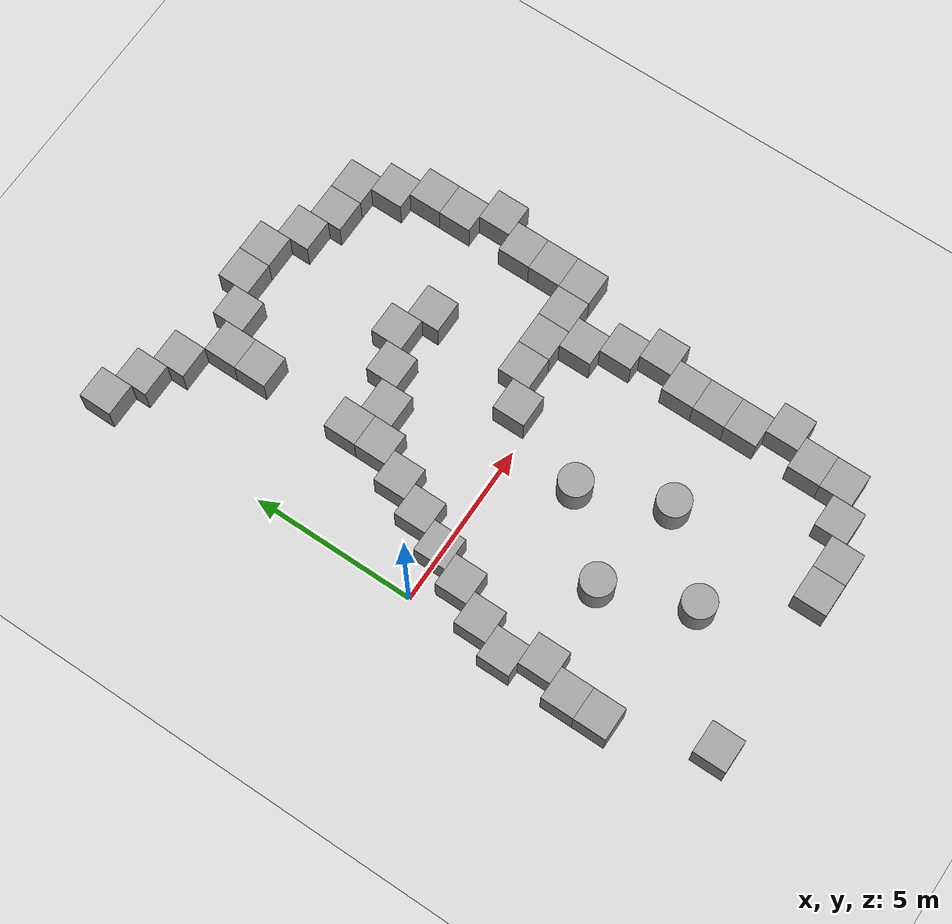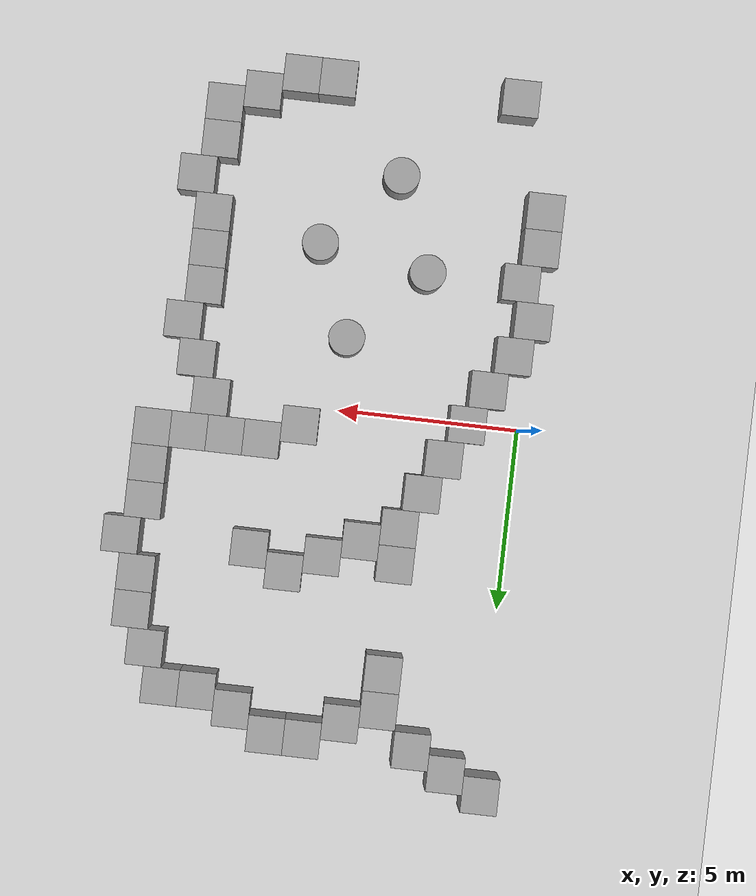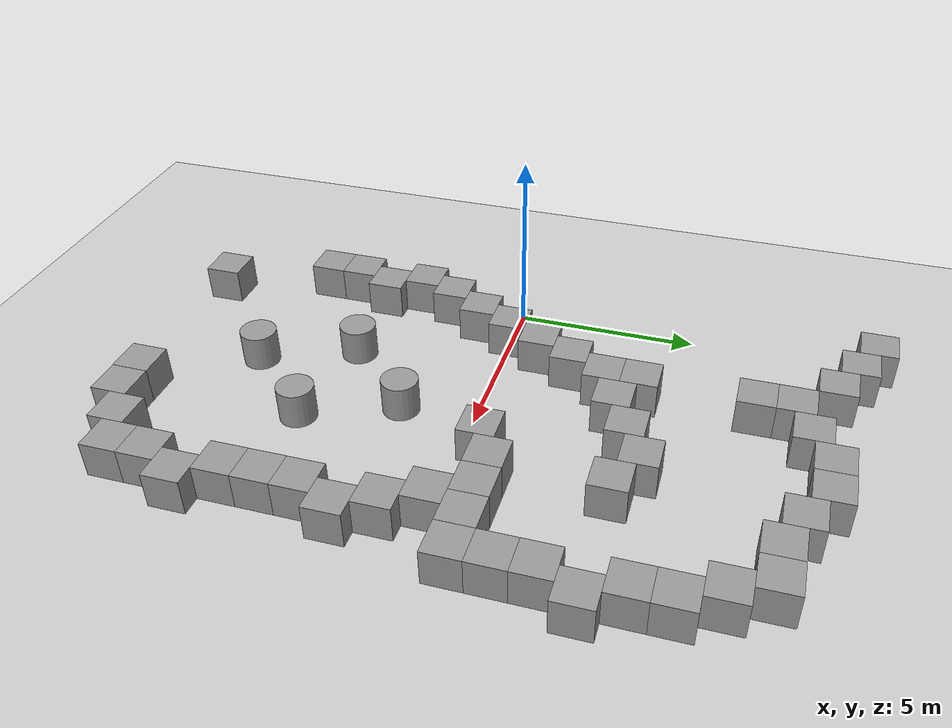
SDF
<sdf version="1.4">
 <world name="default">
  <model name="ground_plane">
   <static>1</static>
   <link name="link">
    <collision name="collision">
     <geometry><plane><normal>0 0 1</normal><size>100 100</size></plane></geometry>
     <surface><friction><ode><mu>100</mu><mu2>50</mu2></ode></friction></surface>
    </collision>
    <visual name="visual">
     <cast_shadows>0</cast_shadows>
     <geometry><plane><normal>0 0 1</normal><size>100 100</size></plane></geometry>
     <material>
      <script><uri>file://media/materials/scripts/gazebo.material</uri><name>Gazebo/Grey</name></script>
     </material>
    </visual>
    <velocity_decay><linear>0</linear><angular>0</angular></velocity_decay>
   </link>
  </model>
  <model name="unit_box_2">
   <pose>1.00001 -9 0.5 0 -0 6e-06</pose>
   <link name="link">
    <inertial>
     <mass>1</mass>
     <inertia><ixx>1</ixx><ixy>0</ixy><ixz>0</ixz><iyy>1</iyy><iyz>0</iyz><izz>1</izz></inertia>
    </inertial>
    <collision name="collision"><geometry><box><size>1 1 1</size></box></geometry></collision>
    <visual name="visual">
     <geometry><box><size>1 1 1</size></box></geometry>
     <material>
      <script><uri>file://media/materials/scripts/gazebo.material</uri><name>Gazebo/Grey</name></script>
     </material>
    </visual>
    <velocity_decay><linear>0</linear><angular>0</angular></velocity_decay>
   </link>
   <static>0</static>
  </model>
  <model name="unit_box_3">
   <pose>6 -9 0.5 0 -0 2e-06</pose>
   <link name="link">
    <inertial>
     <mass>1</mass>
     <inertia><ixx>1</ixx><ixy>0</ixy><ixz>0</ixz><iyy>1</iyy><iyz>0</iyz><izz>1</izz></inertia>
    </inertial>
    <collision name="collision"><geometry><box><size>1 1 1</size></box></geometry></collision>
    <visual name="visual">
     <geometry><box><size>1 1 1</size></box></geometry>
     <material>
      <script><uri>file://media/materials/scripts/gazebo.material</uri><name>Gazebo/Grey</name></script>
     </material>
    </visual>
    <velocity_decay><linear>0</linear><angular>0</angular></velocity_decay>
   </link>
   <static>0</static>
  </model>
  <model name="unit_box_4">
   <pose>7 -9 0.5 0 -0 3e-06</pose>
   <link name="link">
    <inertial>
     <mass>1</mass>
     <inertia><ixx>1</ixx><ixy>0</ixy><ixz>0</ixz><iyy>1</iyy><iyz>0</iyz><izz>1</izz></inertia>
    </inertial>
    <collision name="collision"><geometry><box><size>1 1 1</size></box></geometry></collision>
    <visual name="visual">
     <geometry><box><size>1 1 1</size></box></geometry>
     <material>
      <script><uri>file://media/materials/scripts/gazebo.material</uri><name>Gazebo/Grey</name></script>
     </material>
    </visual>
    <velocity_decay><linear>0</linear><angular>0</angular></velocity_decay>
   </link>
   <static>0</static>
  </model>
  <model name="unit_box_5">
   <pose>8 -8.44018 0.5 0 -0 4e-06</pose>
   <link name="link">
    <inertial>
     <mass>1</mass>
     <inertia><ixx>1</ixx><ixy>0</ixy><ixz>0</ixz><iyy>1</iyy><iyz>0</iyz><izz>1</izz></inertia>
    </inertial>
    <collision name="collision"><geometry><box><size>1 1 1</size></box></geometry></collision>
    <visual name="visual">
     <geometry><box><size>1 1 1</size></box></geometry>
     <material>
      <script><uri>file://media/materials/scripts/gazebo.material</uri><name>Gazebo/Grey</name></script>
     </material>
    </visual>
    <velocity_decay><linear>0</linear><angular>0</angular></velocity_decay>
   </link>
   <static>0</static>
  </model>
  <model name="unit_box_6">
   <pose>9 -8.00001 0.5 0 -0 0</pose>
   <link name="link">
    <inertial>
     <mass>1</mass>
     <inertia><ixx>1</ixx><ixy>0</ixy><ixz>0</ixz><iyy>1</iyy><iyz>0</iyz><izz>1</izz></inertia>
    </inertial>
    <collision name="collision"><geometry><box><size>1 1 1</size></box></geometry></collision>
    <visual name="visual">
     <geometry><box><size>1 1 1</size></box></geometry>
     <material>
      <script><uri>file://media/materials/scripts/gazebo.material</uri><name>Gazebo/Grey</name></script>
     </material>
    </visual>
    <velocity_decay><linear>0</linear><angular>0</angular></velocity_decay>
   </link>
   <static>0</static>
  </model>
  <model name="unit_box_7">
   <pose>9 -7 0.5 0 0 -1e-06</pose>
   <link name="link">
    <inertial>
     <mass>1</mass>
     <inertia><ixx>1</ixx><ixy>0</ixy><ixz>0</ixz><iyy>1</iyy><iyz>0</iyz><izz>1</izz></inertia>
    </inertial>
    <collision name="collision"><geometry><box><size>1 1 1</size></box></geometry></collision>
    <visual name="visual">
     <geometry><box><size>1 1 1</size></box></geometry>
     <material>
      <script><uri>file://media/materials/scripts/gazebo.material</uri><name>Gazebo/Grey</name></script>
     </material>
    </visual>
    <velocity_decay><linear>0</linear><angular>0</angular></velocity_decay>
   </link>
   <static>0</static>
  </model>
  <model name="unit_box_8">
   <pose>9.53836 -6 0.5 -0 -0 -1e-06</pose>
   <link name="link">
    <inertial>
     <mass>1</mass>
     <inertia><ixx>1</ixx><ixy>0</ixy><ixz>0</ixz><iyy>1</iyy><iyz>0</iyz><izz>1</izz></inertia>
    </inertial>
    <collision name="collision"><geometry><box><size>1 1 1</size></box></geometry></collision>
    <visual name="visual">
     <geometry><box><size>1 1 1</size></box></geometry>
     <material>
      <script><uri>file://media/materials/scripts/gazebo.material</uri><name>Gazebo/Grey</name></script>
     </material>
    </visual>
    <velocity_decay><linear>0</linear><angular>0</angular></velocity_decay>
   </link>
   <static>0</static>
  </model>
  <model name="unit_box_9">
   <pose>9 -5 0.5 0 -0 0</pose>
   <link name="link">
    <inertial>
     <mass>1</mass>
     <inertia><ixx>1</ixx><ixy>0</ixy><ixz>0</ixz><iyy>1</iyy><iyz>0</iyz><izz>1</izz></inertia>
    </inertial>
    <collision name="collision"><geometry><box><size>1 1 1</size></box></geometry></collision>
    <visual name="visual">
     <geometry><box><size>1 1 1</size></box></geometry>
     <material>
      <script><uri>file://media/materials/scripts/gazebo.material</uri><name>Gazebo/Grey</name></script>
     </material>
    </visual>
    <velocity_decay><linear>0</linear><angular>0</angular></velocity_decay>
   </link>
   <static>0</static>
  </model>
  <model name="unit_box_10">
   <pose>9 -4 0.5 0 -0 1e-06</pose>
   <link name="link">
    <inertial>
     <mass>1</mass>
     <inertia><ixx>1</ixx><ixy>0</ixy><ixz>0</ixz><iyy>1</iyy><iyz>0</iyz><izz>1</izz></inertia>
    </inertial>
    <collision name="collision"><geometry><box><size>1 1 1</size></box></geometry></collision>
    <visual name="visual">
     <geometry><box><size>1 1 1</size></box></geometry>
     <material>
      <script><uri>file://media/materials/scripts/gazebo.material</uri><name>Gazebo/Grey</name></script>
     </material>
    </visual>
    <velocity_decay><linear>0</linear><angular>0</angular></velocity_decay>
   </link>
   <static>0</static>
  </model>
  <model name="unit_box_11">
   <pose>8.99999 -3 0.5 0 -0 2e-06</pose>
   <link name="link">
    <inertial>
     <mass>1</mass>
     <inertia><ixx>1</ixx><ixy>0</ixy><ixz>0</ixz><iyy>1</iyy><iyz>0</iyz><izz>1</izz></inertia>
    </inertial>
    <collision name="collision"><geometry><box><size>1 1 1</size></box></geometry></collision>
    <visual name="visual">
     <geometry><box><size>1 1 1</size></box></geometry>
     <material>
      <script><uri>file://media/materials/scripts/gazebo.material</uri><name>Gazebo/Grey</name></script>
     </material>
    </visual>
    <velocity_decay><linear>0</linear><angular>0</angular></velocity_decay>
   </link>
   <static>0</static>
  </model>
  <model name="unit_box_12">
   <pose>9.4726 -1.99999 0.5 0 -0 1e-05</pose>
   <link name="link">
    <inertial>
     <mass>1</mass>
     <inertia><ixx>1</ixx><ixy>0</ixy><ixz>0</ixz><iyy>1</iyy><iyz>0</iyz><izz>1</izz></inertia>
    </inertial>
    <collision name="collision"><geometry><box><size>1 1 1</size></box></geometry></collision>
    <visual name="visual">
     <geometry><box><size>1 1 1</size></box></geometry>
     <material>
      <script><uri>file://media/materials/scripts/gazebo.material</uri><name>Gazebo/Grey</name></script>
     </material>
    </visual>
    <velocity_decay><linear>0</linear><angular>0</angular></velocity_decay>
   </link>
   <static>0</static>
  </model>
  <model name="unit_box_13">
   <pose>9 -0.999999 0.5 0 -0 1.1e-05</pose>
   <link name="link">
    <inertial>
     <mass>1</mass>
     <inertia><ixx>1</ixx><ixy>0</ixy><ixz>0</ixz><iyy>1</iyy><iyz>0</iyz><izz>1</izz></inertia>
    </inertial>
    <collision name="collision"><geometry><box><size>1 1 1</size></box></geometry></collision>
    <visual name="visual">
     <geometry><box><size>1 1 1</size></box></geometry>
     <material>
      <script><uri>file://media/materials/scripts/gazebo.material</uri><name>Gazebo/Grey</name></script>
     </material>
    </visual>
    <velocity_decay><linear>0</linear><angular>0</angular></velocity_decay>
   </link>
   <static>0</static>
  </model>
  <model name="unit_box_14">
   <pose>8.50667 -1e-06 0.5 0 -0 4e-06</pose>
   <link name="link">
    <inertial>
     <mass>1</mass>
     <inertia><ixx>1</ixx><ixy>0</ixy><ixz>0</ixz><iyy>1</iyy><iyz>0</iyz><izz>1</izz></inertia>
    </inertial>
    <collision name="collision"><geometry><box><size>1 1 1</size></box></geometry></collision>
    <visual name="visual">
     <geometry><box><size>1 1 1</size></box></geometry>
     <material>
      <script><uri>file://media/materials/scripts/gazebo.material</uri><name>Gazebo/Grey</name></script>
     </material>
    </visual>
    <velocity_decay><linear>0</linear><angular>0</angular></velocity_decay>
   </link>
   <static>0</static>
  </model>
  <model name="unit_box_15">
   <pose>8 0.999998 0.5 0 -0 6e-06</pose>
   <link name="link">
    <inertial>
     <mass>1</mass>
     <inertia><ixx>1</ixx><ixy>0</ixy><ixz>0</ixz><iyy>1</iyy><iyz>0</iyz><izz>1</izz></inertia>
    </inertial>
    <collision name="collision"><geometry><box><size>1 1 1</size></box></geometry></collision>
    <visual name="visual">
     <geometry><box><size>1 1 1</size></box></geometry>
     <material>
      <script><uri>file://media/materials/scripts/gazebo.material</uri><name>Gazebo/Grey</name></script>
     </material>
    </visual>
    <velocity_decay><linear>0</linear><angular>0</angular></velocity_decay>
   </link>
   <static>0</static>
  </model>
  <model name="unit_box_18">
   <pose>9e-06 -6 0.5 0 -0 -3e-06</pose>
   <link name="link">
    <inertial>
     <mass>1</mass>
     <inertia><ixx>1</ixx><ixy>0</ixy><ixz>0</ixz><iyy>1</iyy><iyz>0</iyz><izz>1</izz></inertia>
    </inertial>
    <collision name="collision"><geometry><box><size>1 1 1</size></box></geometry></collision>
    <visual name="visual">
     <geometry><box><size>1 1 1</size></box></geometry>
     <material>
      <script><uri>file://media/materials/scripts/gazebo.material</uri><name>Gazebo/Grey</name></script>
     </material>
    </visual>
    <velocity_decay><linear>0</linear><angular>0</angular></velocity_decay>
   </link>
   <static>0</static>
  </model>
  <model name="unit_box_19">
   <pose>1.6e-05 -5 0.5 0 0 -3e-06</pose>
   <link name="link">
    <inertial>
     <mass>1</mass>
     <inertia><ixx>1</ixx><ixy>0</ixy><ixz>0</ixz><iyy>1</iyy><iyz>0</iyz><izz>1</izz></inertia>
    </inertial>
    <collision name="collision"><geometry><box><size>1 1 1</size></box></geometry></collision>
    <visual name="visual">
     <geometry><box><size>1 1 1</size></box></geometry>
     <material>
      <script><uri>file://media/materials/scripts/gazebo.material</uri><name>Gazebo/Grey</name></script>
     </material>
    </visual>
    <velocity_decay><linear>0</linear><angular>0</angular></velocity_decay>
   </link>
   <static>0</static>
  </model>
  <model name="unit_box_20">
   <pose>0.438754 -4 0.5 0 0 -3e-06</pose>
   <link name="link">
    <inertial>
     <mass>1</mass>
     <inertia><ixx>1</ixx><ixy>0</ixy><ixz>0</ixz><iyy>1</iyy><iyz>0</iyz><izz>1</izz></inertia>
    </inertial>
    <collision name="collision"><geometry><box><size>1 1 1</size></box></geometry></collision>
    <visual name="visual">
     <geometry><box><size>1 1 1</size></box></geometry>
     <material>
      <script><uri>file://media/materials/scripts/gazebo.material</uri><name>Gazebo/Grey</name></script>
     </material>
    </visual>
    <velocity_decay><linear>0</linear><angular>0</angular></velocity_decay>
   </link>
   <static>0</static>
  </model>
  <model name="unit_box_21">
   <pose>1.6e-05 -3 0.5 0 0 -6e-06</pose>
   <link name="link">
    <inertial>
     <mass>1</mass>
     <inertia><ixx>1</ixx><ixy>0</ixy><ixz>0</ixz><iyy>1</iyy><iyz>0</iyz><izz>1</izz></inertia>
    </inertial>
    <collision name="collision"><geometry><box><size>1 1 1</size></box></geometry></collision>
    <visual name="visual">
     <geometry><box><size>1 1 1</size></box></geometry>
     <material>
      <script><uri>file://media/materials/scripts/gazebo.material</uri><name>Gazebo/Grey</name></script>
     </material>
    </visual>
    <velocity_decay><linear>0</linear><angular>0</angular></velocity_decay>
   </link>
   <static>0</static>
  </model>
  <model name="unit_box_22">
   <pose>0.407129 -2 0.5 -0 -0 -8e-06</pose>
   <link name="link">
    <inertial>
     <mass>1</mass>
     <inertia><ixx>1</ixx><ixy>0</ixy><ixz>0</ixz><iyy>1</iyy><iyz>0</iyz><izz>1</izz></inertia>
    </inertial>
    <collision name="collision"><geometry><box><size>1 1 1</size></box></geometry></collision>
    <visual name="visual">
     <geometry><box><size>1 1 1</size></box></geometry>
     <material>
      <script><uri>file://media/materials/scripts/gazebo.material</uri><name>Gazebo/Grey</name></script>
     </material>
    </visual>
    <velocity_decay><linear>0</linear><angular>0</angular></velocity_decay>
   </link>
   <static>0</static>
  </model>
  <model name="unit_box_23">
   <pose>1 -1 0.5 0 0 -4e-06</pose>
   <link name="link">
    <inertial>
     <mass>1</mass>
     <inertia><ixx>1</ixx><ixy>0</ixy><ixz>0</ixz><iyy>1</iyy><iyz>0</iyz><izz>1</izz></inertia>
    </inertial>
    <collision name="collision"><geometry><box><size>1 1 1</size></box></geometry></collision>
    <visual name="visual">
     <geometry><box><size>1 1 1</size></box></geometry>
     <material>
      <script><uri>file://media/materials/scripts/gazebo.material</uri><name>Gazebo/Grey</name></script>
     </material>
    </visual>
    <velocity_decay><linear>0</linear><angular>0</angular></velocity_decay>
   </link>
   <static>0</static>
  </model>
  <model name="unit_box_24">
   <pose>1.46387 5e-06 0.5 -0 -0 -8e-06</pose>
   <link name="link">
    <inertial>
     <mass>1</mass>
     <inertia><ixx>1</ixx><ixy>0</ixy><ixz>0</ixz><iyy>1</iyy><iyz>0</iyz><izz>1</izz></inertia>
    </inertial>
    <collision name="collision"><geometry><box><size>1 1 1</size></box></geometry></collision>
    <visual name="visual">
     <geometry><box><size>1 1 1</size></box></geometry>
     <material>
      <script><uri>file://media/materials/scripts/gazebo.material</uri><name>Gazebo/Grey</name></script>
     </material>
    </visual>
    <velocity_decay><linear>0</linear><angular>0</angular></velocity_decay>
   </link>
   <static>0</static>
  </model>
  <model name="unit_box_25">
   <pose>2 1 0.5 -0 -0 -8e-06</pose>
   <link name="link">
    <inertial>
     <mass>1</mass>
     <inertia><ixx>1</ixx><ixy>0</ixy><ixz>0</ixz><iyy>1</iyy><iyz>0</iyz><izz>1</izz></inertia>
    </inertial>
    <collision name="collision"><geometry><box><size>1 1 1</size></box></geometry></collision>
    <visual name="visual">
     <geometry><box><size>1 1 1</size></box></geometry>
     <material>
      <script><uri>file://media/materials/scripts/gazebo.material</uri><name>Gazebo/Grey</name></script>
     </material>
    </visual>
    <velocity_decay><linear>0</linear><angular>0</angular></velocity_decay>
   </link>
   <static>0</static>
  </model>
  <model name="unit_box_26">
   <pose>2.48015 2 0.5 -0 -0 -7e-06</pose>
   <link name="link">
    <inertial>
     <mass>1</mass>
     <inertia><ixx>1</ixx><ixy>0</ixy><ixz>0</ixz><iyy>1</iyy><iyz>0</iyz><izz>1</izz></inertia>
    </inertial>
    <collision name="collision"><geometry><box><size>1 1 1</size></box></geometry></collision>
    <visual name="visual">
     <geometry><box><size>1 1 1</size></box></geometry>
     <material>
      <script><uri>file://media/materials/scripts/gazebo.material</uri><name>Gazebo/Grey</name></script>
     </material>
    </visual>
    <velocity_decay><linear>0</linear><angular>0</angular></velocity_decay>
   </link>
   <static>0</static>
  </model>
  <model name="unit_box_27">
   <pose>3 3 0.5 0 0 -4e-06</pose>
   <link name="link">
    <inertial>
     <mass>1</mass>
     <inertia><ixx>1</ixx><ixy>0</ixy><ixz>0</ixz><iyy>1</iyy><iyz>0</iyz><izz>1</izz></inertia>
    </inertial>
    <collision name="collision"><geometry><box><size>1 1 1</size></box></geometry></collision>
    <visual name="visual">
     <geometry><box><size>1 1 1</size></box></geometry>
     <material>
      <script><uri>file://media/materials/scripts/gazebo.material</uri><name>Gazebo/Grey</name></script>
     </material>
    </visual>
    <velocity_decay><linear>0</linear><angular>0</angular></velocity_decay>
   </link>
   <static>0</static>
  </model>
  <model name="unit_box_28">
   <pose>3 4 0.5 -0 -0 -3e-06</pose>
   <link name="link">
    <inertial>
     <mass>1</mass>
     <inertia><ixx>1</ixx><ixy>0</ixy><ixz>0</ixz><iyy>1</iyy><iyz>0</iyz><izz>1</izz></inertia>
    </inertial>
    <collision name="collision"><geometry><box><size>1 1 1</size></box></geometry></collision>
    <visual name="visual">
     <geometry><box><size>1 1 1</size></box></geometry>
     <material>
      <script><uri>file://media/materials/scripts/gazebo.material</uri><name>Gazebo/Grey</name></script>
     </material>
    </visual>
    <velocity_decay><linear>0</linear><angular>0</angular></velocity_decay>
   </link>
   <static>0</static>
  </model>
  <model name="unit_box_29">
   <pose>3 7 0.5 0 -0 1.3e-05</pose>
   <link name="link">
    <inertial>
     <mass>1</mass>
     <inertia><ixx>1</ixx><ixy>0</ixy><ixz>0</ixz><iyy>1</iyy><iyz>0</iyz><izz>1</izz></inertia>
    </inertial>
    <collision name="collision"><geometry><box><size>1 1 1</size></box></geometry></collision>
    <visual name="visual">
     <geometry><box><size>1 1 1</size></box></geometry>
     <material>
      <script><uri>file://media/materials/scripts/gazebo.material</uri><name>Gazebo/Grey</name></script>
     </material>
    </visual>
    <velocity_decay><linear>0</linear><angular>0</angular></velocity_decay>
   </link>
   <static>0</static>
  </model>
  <model name="unit_box_30">
   <pose>4 3.46526 0.5 0 -0 -3e-06</pose>
   <link name="link">
    <inertial>
     <mass>1</mass>
     <inertia><ixx>1</ixx><ixy>0</ixy><ixz>0</ixz><iyy>1</iyy><iyz>0</iyz><izz>1</izz></inertia>
    </inertial>
    <collision name="collision"><geometry><box><size>1 1 1</size></box></geometry></collision>
    <visual name="visual">
     <geometry><box><size>1 1 1</size></box></geometry>
     <material>
      <script><uri>file://media/materials/scripts/gazebo.material</uri><name>Gazebo/Grey</name></script>
     </material>
    </visual>
    <velocity_decay><linear>0</linear><angular>0</angular></velocity_decay>
   </link>
   <static>0</static>
  </model>
  <model name="unit_box_31">
   <pose>5 4 0.5 0 -0 9e-06</pose>
   <link name="link">
    <inertial>
     <mass>1</mass>
     <inertia><ixx>1</ixx><ixy>0</ixy><ixz>0</ixz><iyy>1</iyy><iyz>0</iyz><izz>1</izz></inertia>
    </inertial>
    <collision name="collision"><geometry><box><size>1 1 1</size></box></geometry></collision>
    <visual name="visual">
     <geometry><box><size>1 1 1</size></box></geometry>
     <material>
      <script><uri>file://media/materials/scripts/gazebo.material</uri><name>Gazebo/Grey</name></script>
     </material>
    </visual>
    <velocity_decay><linear>0</linear><angular>0</angular></velocity_decay>
   </link>
   <static>0</static>
  </model>
  <model name="unit_box_32">
   <pose>6 4.53052 0.5 0 -0 7e-06</pose>
   <link name="link">
    <inertial>
     <mass>1</mass>
     <inertia><ixx>1</ixx><ixy>0</ixy><ixz>0</ixz><iyy>1</iyy><iyz>0</iyz><izz>1</izz></inertia>
    </inertial>
    <collision name="collision"><geometry><box><size>1 1 1</size></box></geometry></collision>
    <visual name="visual">
     <geometry><box><size>1 1 1</size></box></geometry>
     <material>
      <script><uri>file://media/materials/scripts/gazebo.material</uri><name>Gazebo/Grey</name></script>
     </material>
    </visual>
    <velocity_decay><linear>0</linear><angular>0</angular></velocity_decay>
   </link>
   <static>0</static>
  </model>
  <model name="unit_box_33">
   <pose>7 1 0.5 0 -0 2e-06</pose>
   <link name="link">
    <inertial>
     <mass>1</mass>
     <inertia><ixx>1</ixx><ixy>0</ixy><ixz>0</ixz><iyy>1</iyy><iyz>0</iyz><izz>1</izz></inertia>
    </inertial>
    <collision name="collision"><geometry><box><size>1 1 1</size></box></geometry></collision>
    <visual name="visual">
     <geometry><box><size>1 1 1</size></box></geometry>
     <material>
      <script><uri>file://media/materials/scripts/gazebo.material</uri><name>Gazebo/Grey</name></script>
     </material>
    </visual>
    <velocity_decay><linear>0</linear><angular>0</angular></velocity_decay>
   </link>
   <static>0</static>
  </model>
  <model name="unit_box_34">
   <pose>6 0.509657 0.5 0 -0 2e-06</pose>
   <link name="link">
    <inertial>
     <mass>1</mass>
     <inertia><ixx>1</ixx><ixy>0</ixy><ixz>0</ixz><iyy>1</iyy><iyz>0</iyz><izz>1</izz></inertia>
    </inertial>
    <collision name="collision"><geometry><box><size>1 1 1</size></box></geometry></collision>
    <visual name="visual">
     <geometry><box><size>1 1 1</size></box></geometry>
     <material>
      <script><uri>file://media/materials/scripts/gazebo.material</uri><name>Gazebo/Grey</name></script>
     </material>
    </visual>
    <velocity_decay><linear>0</linear><angular>0</angular></velocity_decay>
   </link>
   <static>0</static>
  </model>
  <model name="unit_box_35">
   <pose>7 4 0.5 0 -0 3e-06</pose>
   <link name="link">
    <inertial>
     <mass>1</mass>
     <inertia><ixx>1</ixx><ixy>0</ixy><ixz>0</ixz><iyy>1</iyy><iyz>0</iyz><izz>1</izz></inertia>
    </inertial>
    <collision name="collision"><geometry><box><size>1 1 1</size></box></geometry></collision>
    <visual name="visual">
     <geometry><box><size>1 1 1</size></box></geometry>
     <material>
      <script><uri>file://media/materials/scripts/gazebo.material</uri><name>Gazebo/Grey</name></script>
     </material>
    </visual>
    <velocity_decay><linear>0</linear><angular>0</angular></velocity_decay>
   </link>
   <static>0</static>
  </model>
  <model name="unit_box_36">
   <pose>9.00001 1 0.5 0 0 -8e-06</pose>
   <link name="link">
    <inertial>
     <mass>1</mass>
     <inertia><ixx>1</ixx><ixy>0</ixy><ixz>0</ixz><iyy>1</iyy><iyz>0</iyz><izz>1</izz></inertia>
    </inertial>
    <collision name="collision"><geometry><box><size>1 1 1</size></box></geometry></collision>
    <visual name="visual">
     <geometry><box><size>1 1 1</size></box></geometry>
     <material>
      <script><uri>file://media/materials/scripts/gazebo.material</uri><name>Gazebo/Grey</name></script>
     </material>
    </visual>
    <velocity_decay><linear>0</linear><angular>0</angular></velocity_decay>
   </link>
   <static>0</static>
  </model>
  <model name="unit_box_37">
   <pose>10 0.999997 0.5 -1e-06 1e-06 -9e-06</pose>
   <link name="link">
    <inertial>
     <mass>1</mass>
     <inertia><ixx>1</ixx><ixy>0</ixy><ixz>0</ixz><iyy>1</iyy><iyz>0</iyz><izz>1</izz></inertia>
    </inertial>
    <collision name="collision"><geometry><box><size>1 1 1</size></box></geometry></collision>
    <visual name="visual">
     <geometry><box><size>1 1 1</size></box></geometry>
     <material>
      <script><uri>file://media/materials/scripts/gazebo.material</uri><name>Gazebo/Grey</name></script>
     </material>
    </visual>
    <velocity_decay><linear>0</linear><angular>0</angular></velocity_decay>
   </link>
   <static>0</static>
  </model>
  <model name="unit_box_38">
   <pose>10 2 0.5 -0 -0 -9e-06</pose>
   <link name="link">
    <inertial>
     <mass>1</mass>
     <inertia><ixx>1</ixx><ixy>0</ixy><ixz>0</ixz><iyy>1</iyy><iyz>0</iyz><izz>1</izz></inertia>
    </inertial>
    <collision name="collision"><geometry><box><size>1 1 1</size></box></geometry></collision>
    <visual name="visual">
     <geometry><box><size>1 1 1</size></box></geometry>
     <material>
      <script><uri>file://media/materials/scripts/gazebo.material</uri><name>Gazebo/Grey</name></script>
     </material>
    </visual>
    <velocity_decay><linear>0</linear><angular>0</angular></velocity_decay>
   </link>
   <static>0</static>
  </model>
  <model name="unit_box_39">
   <pose>10 3 0.5 -0 -0 -1e-05</pose>
   <link name="link">
    <inertial>
     <mass>1</mass>
     <inertia><ixx>1</ixx><ixy>0</ixy><ixz>0</ixz><iyy>1</iyy><iyz>0</iyz><izz>1</izz></inertia>
    </inertial>
    <collision name="collision"><geometry><box><size>1 1 1</size></box></geometry></collision>
    <visual name="visual">
     <geometry><box><size>1 1 1</size></box></geometry>
     <material>
      <script><uri>file://media/materials/scripts/gazebo.material</uri><name>Gazebo/Grey</name></script>
     </material>
    </visual>
    <velocity_decay><linear>0</linear><angular>0</angular></velocity_decay>
   </link>
   <static>0</static>
  </model>
  <model name="unit_box_40">
   <pose>10.5198 4 0.5 0 -0 5e-06</pose>
   <link name="link">
    <inertial>
     <mass>1</mass>
     <inertia><ixx>1</ixx><ixy>0</ixy><ixz>0</ixz><iyy>1</iyy><iyz>0</iyz><izz>1</izz></inertia>
    </inertial>
    <collision name="collision"><geometry><box><size>1 1 1</size></box></geometry></collision>
    <visual name="visual">
     <geometry><box><size>1 1 1</size></box></geometry>
     <material>
      <script><uri>file://media/materials/scripts/gazebo.material</uri><name>Gazebo/Grey</name></script>
     </material>
    </visual>
    <velocity_decay><linear>0</linear><angular>0</angular></velocity_decay>
   </link>
   <static>0</static>
  </model>
  <model name="unit_box_41">
   <pose>10 5 0.5 0 -0 8e-06</pose>
   <link name="link">
    <inertial>
     <mass>1</mass>
     <inertia><ixx>1</ixx><ixy>0</ixy><ixz>0</ixz><iyy>1</iyy><iyz>0</iyz><izz>1</izz></inertia>
    </inertial>
    <collision name="collision"><geometry><box><size>1 1 1</size></box></geometry></collision>
    <visual name="visual">
     <geometry><box><size>1 1 1</size></box></geometry>
     <material>
      <script><uri>file://media/materials/scripts/gazebo.material</uri><name>Gazebo/Grey</name></script>
     </material>
    </visual>
    <velocity_decay><linear>0</linear><angular>0</angular></velocity_decay>
   </link>
   <static>0</static>
  </model>
  <model name="unit_box_42">
   <pose>10 6 0.5 0 -0 8e-06</pose>
   <link name="link">
    <inertial>
     <mass>1</mass>
     <inertia><ixx>1</ixx><ixy>0</ixy><ixz>0</ixz><iyy>1</iyy><iyz>0</iyz><izz>1</izz></inertia>
    </inertial>
    <collision name="collision"><geometry><box><size>1 1 1</size></box></geometry></collision>
    <visual name="visual">
     <geometry><box><size>1 1 1</size></box></geometry>
     <material>
      <script><uri>file://media/materials/scripts/gazebo.material</uri><name>Gazebo/Grey</name></script>
     </material>
    </visual>
    <velocity_decay><linear>0</linear><angular>0</angular></velocity_decay>
   </link>
   <static>0</static>
  </model>
  <model name="unit_box_43">
   <pose>9.52562 7 0.5 0 -0 3e-06</pose>
   <link name="link">
    <inertial>
     <mass>1</mass>
     <inertia><ixx>1</ixx><ixy>0</ixy><ixz>0</ixz><iyy>1</iyy><iyz>0</iyz><izz>1</izz></inertia>
    </inertial>
    <collision name="collision"><geometry><box><size>1 1 1</size></box></geometry></collision>
    <visual name="visual">
     <geometry><box><size>1 1 1</size></box></geometry>
     <material>
      <script><uri>file://media/materials/scripts/gazebo.material</uri><name>Gazebo/Grey</name></script>
     </material>
    </visual>
    <velocity_decay><linear>0</linear><angular>0</angular></velocity_decay>
   </link>
   <static>0</static>
  </model>
  <model name="unit_box_44">
   <pose>9 8.00001 0.5 0 -0 -4e-06</pose>
   <link name="link">
    <inertial>
     <mass>1</mass>
     <inertia><ixx>1</ixx><ixy>0</ixy><ixz>0</ixz><iyy>1</iyy><iyz>0</iyz><izz>1</izz></inertia>
    </inertial>
    <collision name="collision"><geometry><box><size>1 1 1</size></box></geometry></collision>
    <visual name="visual">
     <geometry><box><size>1 1 1</size></box></geometry>
     <material>
      <script><uri>file://media/materials/scripts/gazebo.material</uri><name>Gazebo/Grey</name></script>
     </material>
    </visual>
    <velocity_decay><linear>0</linear><angular>0</angular></velocity_decay>
   </link>
   <static>0</static>
  </model>
  <model name="unit_box_45">
   <pose>8 8 0.5 0 -0 -4e-06</pose>
   <link name="link">
    <inertial>
     <mass>1</mass>
     <inertia><ixx>1</ixx><ixy>0</ixy><ixz>0</ixz><iyy>1</iyy><iyz>0</iyz><izz>1</izz></inertia>
    </inertial>
    <collision name="collision"><geometry><box><size>1 1 1</size></box></geometry></collision>
    <visual name="visual">
     <geometry><box><size>1 1 1</size></box></geometry>
     <material>
      <script><uri>file://media/materials/scripts/gazebo.material</uri><name>Gazebo/Grey</name></script>
     </material>
    </visual>
    <velocity_decay><linear>0</linear><angular>0</angular></velocity_decay>
   </link>
   <static>0</static>
  </model>
  <model name="unit_box_46">
   <pose>7 8.40883 0.5 0 0 -1e-05</pose>
   <link name="link">
    <inertial>
     <mass>1</mass>
     <inertia><ixx>1</ixx><ixy>0</ixy><ixz>0</ixz><iyy>1</iyy><iyz>0</iyz><izz>1</izz></inertia>
    </inertial>
    <collision name="collision"><geometry><box><size>1 1 1</size></box></geometry></collision>
    <visual name="visual">
     <geometry><box><size>1 1 1</size></box></geometry>
     <material>
      <script><uri>file://media/materials/scripts/gazebo.material</uri><name>Gazebo/Grey</name></script>
     </material>
    </visual>
    <velocity_decay><linear>0</linear><angular>0</angular></velocity_decay>
   </link>
   <static>0</static>
  </model>
  <model name="unit_box_47">
   <pose>6 8.99999 0.5 0 -0 6e-06</pose>
   <link name="link">
    <inertial>
     <mass>1</mass>
     <inertia><ixx>1</ixx><ixy>0</ixy><ixz>0</ixz><iyy>1</iyy><iyz>0</iyz><izz>1</izz></inertia>
    </inertial>
    <collision name="collision"><geometry><box><size>1 1 1</size></box></geometry></collision>
    <visual name="visual">
     <geometry><box><size>1 1 1</size></box></geometry>
     <material>
      <script><uri>file://media/materials/scripts/gazebo.material</uri><name>Gazebo/Grey</name></script>
     </material>
    </visual>
    <velocity_decay><linear>0</linear><angular>0</angular></velocity_decay>
   </link>
   <static>0</static>
  </model>
  <model name="unit_box_48">
   <pose>5 8.99998 0.5 0 -0 6e-06</pose>
   <link name="link">
    <inertial>
     <mass>1</mass>
     <inertia><ixx>1</ixx><ixy>0</ixy><ixz>0</ixz><iyy>1</iyy><iyz>0</iyz><izz>1</izz></inertia>
    </inertial>
    <collision name="collision"><geometry><box><size>1 1 1</size></box></geometry></collision>
    <visual name="visual">
     <geometry><box><size>1 1 1</size></box></geometry>
     <material>
      <script><uri>file://media/materials/scripts/gazebo.material</uri><name>Gazebo/Grey</name></script>
     </material>
    </visual>
    <velocity_decay><linear>0</linear><angular>0</angular></velocity_decay>
   </link>
   <static>0</static>
  </model>
  <model name="unit_box_49">
   <pose>4 8.45386 0.5 0 -0 9e-06</pose>
   <link name="link">
    <inertial>
     <mass>1</mass>
     <inertia><ixx>1</ixx><ixy>0</ixy><ixz>0</ixz><iyy>1</iyy><iyz>0</iyz><izz>1</izz></inertia>
    </inertial>
    <collision name="collision"><geometry><box><size>1 1 1</size></box></geometry></collision>
    <visual name="visual">
     <geometry><box><size>1 1 1</size></box></geometry>
     <material>
      <script><uri>file://media/materials/scripts/gazebo.material</uri><name>Gazebo/Grey</name></script>
     </material>
    </visual>
    <velocity_decay><linear>0</linear><angular>0</angular></velocity_decay>
   </link>
   <static>0</static>
  </model>
  <model name="unit_box_50">
   <pose>3 8.00001 0.5 0 -0 1.7e-05</pose>
   <link name="link">
    <inertial>
     <mass>1</mass>
     <inertia><ixx>1</ixx><ixy>0</ixy><ixz>0</ixz><iyy>1</iyy><iyz>0</iyz><izz>1</izz></inertia>
    </inertial>
    <collision name="collision"><geometry><box><size>1 1 1</size></box></geometry></collision>
    <visual name="visual">
     <geometry><box><size>1 1 1</size></box></geometry>
     <material>
      <script><uri>file://media/materials/scripts/gazebo.material</uri><name>Gazebo/Grey</name></script>
     </material>
    </visual>
    <velocity_decay><linear>0</linear><angular>0</angular></velocity_decay>
   </link>
   <static>0</static>
  </model>
  <model name="unit_cylinder_1">
   <pose>5 -2 0.499992 0 -0 0</pose>
   <link name="link">
    <inertial>
     <mass>1</mass>
     <inertia><ixx>1</ixx><ixy>0</ixy><ixz>0</ixz><iyy>1</iyy><iyz>0</iyz><izz>1</izz></inertia>
    </inertial>
    <collision name="collision">
     <geometry><cylinder><radius>0.5</radius><length>1</length></cylinder></geometry>
    </collision>
    <visual name="visual">
     <geometry><cylinder><radius>0.5</radius><length>1</length></cylinder></geometry>
     <material>
      <script><uri>file://media/materials/scripts/gazebo.material</uri><name>Gazebo/Grey</name></script>
     </material>
    </visual>
    <velocity_decay><linear>0</linear><angular>0</angular></velocity_decay>
   </link>
   <static>0</static>
  </model>
  <model name="unit_cylinder_2">
   <pose>6 -4.4962 0.499999 0 -0 0</pose>
   <link name="link">
    <inertial>
     <mass>1</mass>
     <inertia><ixx>1</ixx><ixy>0</ixy><ixz>0</ixz><iyy>1</iyy><iyz>0</iyz><izz>1</izz></inertia>
    </inertial>
    <collision name="collision">
     <geometry><cylinder><radius>0.5</radius><length>1</length></cylinder></geometry>
    </collision>
    <visual name="visual">
     <geometry><cylinder><radius>0.5</radius><length>1</length></cylinder></geometry>
     <material>
      <script><uri>file://media/materials/scripts/gazebo.material</uri><name>Gazebo/Grey</name></script>
     </material>
    </visual>
    <velocity_decay><linear>0</linear><angular>0</angular></velocity_decay>
   </link>
   <static>0</static>
  </model>
  <model name="unit_cylinder_3">
   <pose>3 -4 0.499992 0 -0 0</pose>
   <link name="link">
    <inertial>
     <mass>1</mass>
     <inertia><ixx>1</ixx><ixy>0</ixy><ixz>0</ixz><iyy>1</iyy><iyz>0</iyz><izz>1</izz></inertia>
    </inertial>
    <collision name="collision">
     <geometry><cylinder><radius>0.5</radius><length>1</length></cylinder></geometry>
    </collision>
    <visual name="visual">
     <geometry><cylinder><radius>0.5</radius><length>1</length></cylinder></geometry>
     <material>
      <script><uri>file://media/materials/scripts/gazebo.material</uri><name>Gazebo/Grey</name></script>
     </material>
    </visual>
    <velocity_decay><linear>0</linear><angular>0</angular></velocity_decay>
   </link>
   <static>0</static>
  </model>
  <model name="unit_cylinder_4">
   <pose>4 -6.54546 0.499998 0 -0 0</pose>
   <link name="link">
    <inertial>
     <mass>1</mass>
     <inertia><ixx>1</ixx><ixy>0</ixy><ixz>0</ixz><iyy>1</iyy><iyz>0</iyz><izz>1</izz></inertia>
    </inertial>
    <collision name="collision">
     <geometry><cylinder><radius>0.5</radius><length>1</length></cylinder></geometry>
    </collision>
    <visual name="visual">
     <geometry><cylinder><radius>0.5</radius><length>1</length></cylinder></geometry>
     <material>
      <script><uri>file://media/materials/scripts/gazebo.material</uri><name>Gazebo/Grey</name></script>
     </material>
    </visual>
    <velocity_decay><linear>0</linear><angular>0</angular></velocity_decay>
   </link>
   <static>0</static>
  </model>
  <model name="unit_box_92">
   <pose>2e-06 10 0.5 0 -0 5e-06</pose>
   <link name="link">
    <inertial>
     <mass>1</mass>
     <inertia><ixx>1</ixx><ixy>0</ixy><ixz>0</ixz><iyy>1</iyy><iyz>0</iyz><izz>1</izz></inertia>
    </inertial>
    <collision name="collision"><geometry><box><size>1 1 1</size></box></geometry></collision>
    <visual name="visual">
     <geometry><box><size>1 1 1</size></box></geometry>
     <material>
      <script><uri>file://media/materials/scripts/gazebo.material</uri><name>Gazebo/Grey</name></script>
     </material>
    </visual>
    <velocity_decay><linear>0</linear><angular>0</angular></velocity_decay>
   </link>
   <static>0</static>
  </model>
  <model name="unit_box_93">
   <pose>1.00001 9.53533 0.5 0 0 -6e-06</pose>
   <link name="link">
    <inertial>
     <mass>1</mass>
     <inertia><ixx>1</ixx><ixy>0</ixy><ixz>0</ixz><iyy>1</iyy><iyz>0</iyz><izz>1</izz></inertia>
    </inertial>
    <collision name="collision"><geometry><box><size>1 1 1</size></box></geometry></collision>
    <visual name="visual">
     <geometry><box><size>1 1 1</size></box></geometry>
     <material>
      <script><uri>file://media/materials/scripts/gazebo.material</uri><name>Gazebo/Grey</name></script>
     </material>
    </visual>
    <velocity_decay><linear>0</linear><angular>0</angular></velocity_decay>
   </link>
   <static>0</static>
  </model>
  <model name="unit_box_94">
   <pose>2 9 0.5 0 0 -4e-06</pose>
   <link name="link">
    <inertial>
     <mass>1</mass>
     <inertia><ixx>1</ixx><ixy>0</ixy><ixz>0</ixz><iyy>1</iyy><iyz>0</iyz><izz>1</izz></inertia>
    </inertial>
    <collision name="collision"><geometry><box><size>1 1 1</size></box></geometry></collision>
    <visual name="visual">
     <geometry><box><size>1 1 1</size></box></geometry>
     <material>
      <script><uri>file://media/materials/scripts/gazebo.material</uri><name>Gazebo/Grey</name></script>
     </material>
    </visual>
    <velocity_decay><linear>0</linear><angular>0</angular></velocity_decay>
   </link>
   <static>0</static>
  </model>
 </world>
</sdf>
